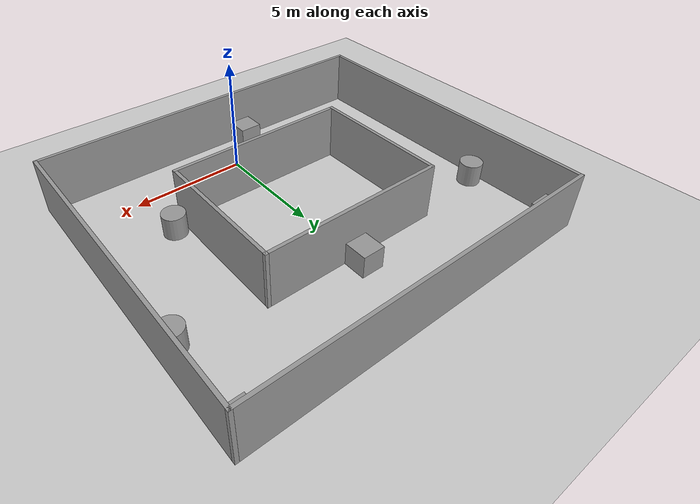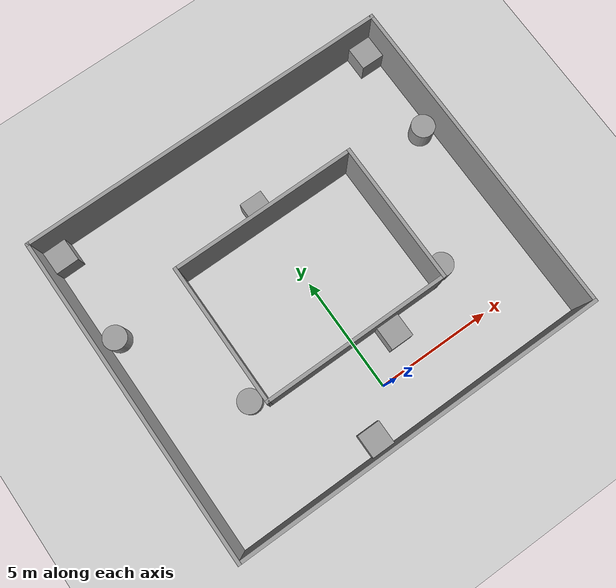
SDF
<sdf version="1.6">
 <world name="default">
  <light name="sun" type="directional">
   <pose>0 0 10 0 -0 0</pose>
   <diffuse>0.8 0.8 0.8 1</diffuse>
   <specular>0.1 0.1 0.1 1</specular>
   <attenuation>
    <range>1000</range>
    <constant>0.9</constant>
    <linear>0.01</linear>
    <quadratic>0.001</quadratic>
   </attenuation>
   <direction>-0.5 0.5 -1</direction>
  </light>
  <model name="ground_plane">
   <static>1</static>
   <link name="link">
    <collision name="collision">
     <geometry><plane><normal>0 0 1</normal><size>100 100</size></plane></geometry>
     <surface><friction><ode><mu>100</mu><mu2>50</mu2></ode></friction></surface>
    </collision>
    <visual name="visual">
     <cast_shadows>0</cast_shadows>
     <geometry><plane><normal>0 0 1</normal><size>100 100</size></plane></geometry>
     <material>
      <script><uri>file://media/materials/scripts/gazebo.material</uri><name>Gazebo/Grey</name></script>
     </material>
    </visual>
   </link>
  </model>
  <physics name="default_physics" default="0" type="ode">
   <real_time_update_rate>1000</real_time_update_rate>
   <max_step_size>0.001</max_step_size>
   <real_time_factor>1</real_time_factor>
   <ode>
    <solver>
     <type>quick</type>
     <iters>150</iters>
     <precon_iters>0</precon_iters>
     <sor>1.4</sor>
     <use_dynamic_moi_rescaling>1</use_dynamic_moi_rescaling>
    </solver>
    <constraints>
     <cfm>1e-05</cfm>
     <erp>0.2</erp>
     <contact_max_correcting_vel>2000</contact_max_correcting_vel>
     <contact_surface_layer>0.01</contact_surface_layer>
    </constraints>
   </ode>
  </physics>
  <scene><ambient>0.4 0.4 0.4 1</ambient><background>0.7 0.7 0.7 1</background><shadows>1</shadows></scene>
  <gravity>0 0 -9.8</gravity>
  <magnetic_field>6e-06 2.3e-05 -4.2e-05</magnetic_field>
  <atmosphere type="adiabatic"/>
  <spherical_coordinates>
   <surface_model>EARTH_WGS84</surface_model>
   <latitude_deg>0</latitude_deg>
   <longitude_deg>0</longitude_deg>
   <elevation>0</elevation>
   <heading_deg>0</heading_deg>
  </spherical_coordinates>
  <model name="l_room">
   <pose>0 5 0 0 -0 0</pose>
   <link name="Wall_11">
    <collision name="Wall_11_Collision">
     <geometry><box><size>16.15 0.15 2.5</size></box></geometry>
     <pose>0 0 1.25 0 -0 0</pose>
    </collision>
    <visual name="Wall_11_Visual">
     <pose>0 0 1.25 0 -0 0</pose>
     <geometry><box><size>16.15 0.15 2.5</size></box></geometry>
     <material>
      <script><uri>file://media/materials/scripts/gazebo.material</uri><name>Gazebo/Grey</name></script>
      <ambient>1 1 1 1</ambient>
     </material>
    </visual>
    <pose>0 -7 0 0 -0 0</pose>
   </link>
   <link name="Wall_13">
    <collision name="Wall_13_Collision">
     <geometry><box><size>14.15 0.15 2.5</size></box></geometry>
     <pose>0 0 1.25 0 -0 0</pose>
    </collision>
    <visual name="Wall_13_Visual">
     <pose>0 0 1.25 0 -0 0</pose>
     <geometry><box><size>14.15 0.15 2.5</size></box></geometry>
     <material>
      <script><uri>file://media/materials/scripts/gazebo.material</uri><name>Gazebo/Grey</name></script>
      <ambient>1 1 1 1</ambient>
     </material>
    </visual>
    <pose>8 0 0 0 -0 1.5708</pose>
   </link>
   <link name="Wall_15">
    <collision name="Wall_15_Collision">
     <geometry><box><size>16.15 0.15 2.5</size></box></geometry>
     <pose>0 0 1.25 0 -0 0</pose>
    </collision>
    <visual name="Wall_15_Visual">
     <pose>0 0 1.25 0 -0 0</pose>
     <geometry><box><size>16.15 0.15 2.5</size></box></geometry>
     <material>
      <script><uri>file://media/materials/scripts/gazebo.material</uri><name>Gazebo/Grey</name></script>
      <ambient>1 1 1 1</ambient>
     </material>
    </visual>
    <pose>0 7 0 0 -0 3.14159</pose>
   </link>
   <link name="Wall_17">
    <collision name="Wall_17_Collision">
     <geometry><box><size>14.15 0.15 2.5</size></box></geometry>
     <pose>0 0 1.25 0 -0 0</pose>
    </collision>
    <visual name="Wall_17_Visual">
     <pose>0 0 1.25 0 -0 0</pose>
     <geometry><box><size>14.15 0.15 2.5</size></box></geometry>
     <material>
      <script><uri>file://media/materials/scripts/gazebo.material</uri><name>Gazebo/Grey</name></script>
      <ambient>1 1 1 1</ambient>
     </material>
    </visual>
    <pose>-8 0 0 0 0 -1.5708</pose>
   </link>
   <link name="Wall_19">
    <collision name="Wall_19_Collision">
     <geometry><box><size>8.15 0.15 2.5</size></box></geometry>
     <pose>0 0 1.25 0 -0 0</pose>
    </collision>
    <visual name="Wall_19_Visual">
     <pose>0 0 1.25 0 -0 0</pose>
     <geometry><box><size>8.15 0.15 2.5</size></box></geometry>
     <material>
      <script><uri>file://media/materials/scripts/gazebo.material</uri><name>Gazebo/Grey</name></script>
      <ambient>1 1 1 1</ambient>
     </material>
    </visual>
    <pose>0 -3 0 0 -0 0</pose>
   </link>
   <link name="Wall_21">
    <collision name="Wall_21_Collision">
     <geometry><box><size>6.15 0.15 2.5</size></box></geometry>
     <pose>0 0 1.25 0 -0 0</pose>
    </collision>
    <visual name="Wall_21_Visual">
     <pose>0 0 1.25 0 -0 0</pose>
     <geometry><box><size>6.15 0.15 2.5</size></box></geometry>
     <material>
      <script><uri>file://media/materials/scripts/gazebo.material</uri><name>Gazebo/Grey</name></script>
      <ambient>1 1 1 1</ambient>
     </material>
    </visual>
    <pose>4 0 0 0 -0 1.5708</pose>
   </link>
   <link name="Wall_23">
    <collision name="Wall_23_Collision">
     <geometry><box><size>8.15 0.15 2.5</size></box></geometry>
     <pose>0 0 1.25 0 -0 0</pose>
    </collision>
    <visual name="Wall_23_Visual">
     <pose>0 0 1.25 0 -0 0</pose>
     <geometry><box><size>8.15 0.15 2.5</size></box></geometry>
     <material>
      <script><uri>file://media/materials/scripts/gazebo.material</uri><name>Gazebo/Grey</name></script>
      <ambient>1 1 1 1</ambient>
     </material>
    </visual>
    <pose>0 3 0 0 -0 3.14159</pose>
   </link>
   <link name="Wall_25">
    <collision name="Wall_25_Collision">
     <geometry><box><size>6.15 0.15 2.5</size></box></geometry>
     <pose>0 0 1.25 0 -0 0</pose>
    </collision>
    <visual name="Wall_25_Visual">
     <pose>0 0 1.25 0 -0 0</pose>
     <geometry><box><size>6.15 0.15 2.5</size></box></geometry>
     <material>
      <script><uri>file://media/materials/scripts/gazebo.material</uri><name>Gazebo/Grey</name></script>
      <ambient>1 1 1 1</ambient>
     </material>
    </visual>
    <pose>-4 0 0 0 0 -1.5708</pose>
   </link>
   <static>1</static>
  </model>
  <model name="unit_box_0">
   <pose>1.5 1.425 0.5 0 -0 0</pose>
   <link name="link">
    <inertial>
     <mass>1</mass>
     <inertia>
      <ixx>0.166667</ixx>
      <ixy>0</ixy>
      <ixz>0</ixz>
      <iyy>0.166667</iyy>
      <iyz>0</iyz>
      <izz>0.166667</izz>
     </inertia>
    </inertial>
    <collision name="collision"><geometry><box><size>1 1 1</size></box></geometry></collision>
    <visual name="visual">
     <geometry><box><size>1 1 1</size></box></geometry>
     <material>
      <script><name>Gazebo/Grey</name><uri>file://media/materials/scripts/gazebo.material</uri></script>
     </material>
    </visual>
   </link>
  </model>
  <model name="unit_box_1">
   <pose>-1.5 -1.425 0.5 0 -0 0</pose>
   <link name="link">
    <inertial>
     <mass>1</mass>
     <inertia>
      <ixx>0.166667</ixx>
      <ixy>0</ixy>
      <ixz>0</ixz>
      <iyy>0.166667</iyy>
      <iyz>0</iyz>
      <izz>0.166667</izz>
     </inertia>
    </inertial>
    <collision name="collision"><geometry><box><size>1 1 1</size></box></geometry></collision>
    <visual name="visual">
     <geometry><box><size>1 1 1</size></box></geometry>
     <material>
      <script><name>Gazebo/Grey</name><uri>file://media/materials/scripts/gazebo.material</uri></script>
     </material>
    </visual>
   </link>
  </model>
  <model name="unit_box_2">
   <pose>0 8.575 0.5 0 0 -1e-06</pose>
   <link name="link">
    <inertial>
     <mass>1</mass>
     <inertia>
      <ixx>0.166667</ixx>
      <ixy>0</ixy>
      <ixz>0</ixz>
      <iyy>0.166667</iyy>
      <iyz>0</iyz>
      <izz>0.166667</izz>
     </inertia>
    </inertial>
    <collision name="collision"><geometry><box><size>1 1 1</size></box></geometry></collision>
    <visual name="visual">
     <geometry><box><size>1 1 1</size></box></geometry>
     <material>
      <script><name>Gazebo/Grey</name><uri>file://media/materials/scripts/gazebo.material</uri></script>
     </material>
    </visual>
   </link>
  </model>
  <model name="unit_box_3">
   <pose>-7.41697 11.417 0.5 0 -0 0.014871</pose>
   <link name="link">
    <inertial>
     <mass>1</mass>
     <inertia>
      <ixx>0.166667</ixx>
      <ixy>0</ixy>
      <ixz>0</ixz>
      <iyy>0.166667</iyy>
      <iyz>0</iyz>
      <izz>0.166667</izz>
     </inertia>
    </inertial>
    <collision name="collision"><geometry><box><size>1 1 1</size></box></geometry></collision>
    <visual name="visual">
     <geometry><box><size>1 1 1</size></box></geometry>
     <material>
      <script><name>Gazebo/Grey</name><uri>file://media/materials/scripts/gazebo.material</uri></script>
     </material>
    </visual>
   </link>
  </model>
  <model name="unit_box_4">
   <pose>7.42298 11.4217 0.5 0 0 -0.003553</pose>
   <link name="link">
    <inertial>
     <mass>1</mass>
     <inertia>
      <ixx>0.166667</ixx>
      <ixy>0</ixy>
      <ixz>0</ixz>
      <iyy>0.166667</iyy>
      <iyz>0</iyz>
      <izz>0.166667</izz>
     </inertia>
    </inertial>
    <collision name="collision"><geometry><box><size>1 1 1</size></box></geometry></collision>
    <visual name="visual">
     <geometry><box><size>1 1 1</size></box></geometry>
     <material>
      <script><name>Gazebo/Grey</name><uri>file://media/materials/scripts/gazebo.material</uri></script>
     </material>
    </visual>
   </link>
  </model>
  <model name="unit_cylinder_0">
   <pose>7.42499 7.5 0.499994 4e-06 5e-06 0</pose>
   <link name="link">
    <inertial>
     <mass>1</mass>
     <inertia><ixx>0.145833</ixx><ixy>0</ixy><ixz>0</ixz><iyy>0.145833</iyy><iyz>0</iyz><izz>0.125</izz></inertia>
    </inertial>
    <collision name="collision">
     <geometry><cylinder><radius>0.5</radius><length>1</length></cylinder></geometry>
    </collision>
    <visual name="visual">
     <geometry><cylinder><radius>0.5</radius><length>1</length></cylinder></geometry>
     <material>
      <script><name>Gazebo/Grey</name><uri>file://media/materials/scripts/gazebo.material</uri></script>
     </material>
    </visual>
   </link>
  </model>
  <model name="unit_cylinder_1">
   <pose>4.57501 2.5 0.499997 3e-06 -4e-06 0</pose>
   <link name="link">
    <inertial>
     <mass>1</mass>
     <inertia><ixx>0.145833</ixx><ixy>0</ixy><ixz>0</ixz><iyy>0.145833</iyy><iyz>0</iyz><izz>0.125</izz></inertia>
    </inertial>
    <collision name="collision">
     <geometry><cylinder><radius>0.5</radius><length>1</length></cylinder></geometry>
    </collision>
    <visual name="visual">
     <geometry><cylinder><radius>0.5</radius><length>1</length></cylinder></geometry>
     <material>
      <script><name>Gazebo/Grey</name><uri>file://media/materials/scripts/gazebo.material</uri></script>
     </material>
    </visual>
   </link>
  </model>
  <model name="unit_cylinder_2">
   <pose>-7.42499 7.5 0.499998 -5e-06 -3e-06 8e-06</pose>
   <link name="link">
    <inertial>
     <mass>1</mass>
     <inertia><ixx>0.145833</ixx><ixy>0</ixy><ixz>0</ixz><iyy>0.145833</iyy><iyz>0</iyz><izz>0.125</izz></inertia>
    </inertial>
    <collision name="collision">
     <geometry><cylinder><radius>0.5</radius><length>1</length></cylinder></geometry>
    </collision>
    <visual name="visual">
     <geometry><cylinder><radius>0.5</radius><length>1</length></cylinder></geometry>
     <material>
      <script><name>Gazebo/Grey</name><uri>file://media/materials/scripts/gazebo.material</uri></script>
     </material>
    </visual>
   </link>
  </model>
  <model name="unit_cylinder_3">
   <pose>-4.57501 2.5 0.499995 -3e-06 3e-06 -7e-06</pose>
   <link name="link">
    <inertial>
     <mass>1</mass>
     <inertia><ixx>0.145833</ixx><ixy>0</ixy><ixz>0</ixz><iyy>0.145833</iyy><iyz>0</iyz><izz>0.125</izz></inertia>
    </inertial>
    <collision name="collision">
     <geometry><cylinder><radius>0.5</radius><length>1</length></cylinder></geometry>
    </collision>
    <visual name="visual">
     <geometry><cylinder><radius>0.5</radius><length>1</length></cylinder></geometry>
     <material>
      <script><name>Gazebo/Grey</name><uri>file://media/materials/scripts/gazebo.material</uri></script>
     </material>
    </visual>
   </link>
  </model>
 </world>
</sdf>
